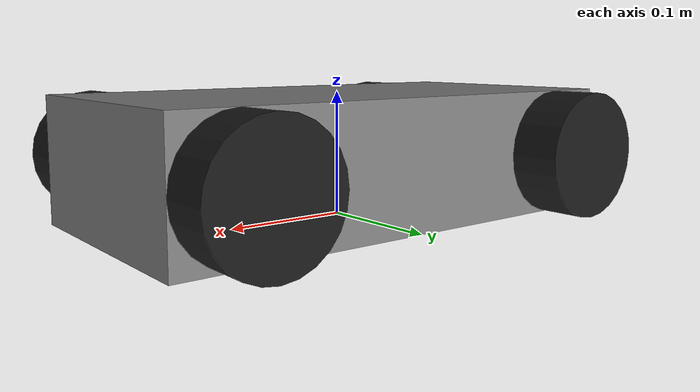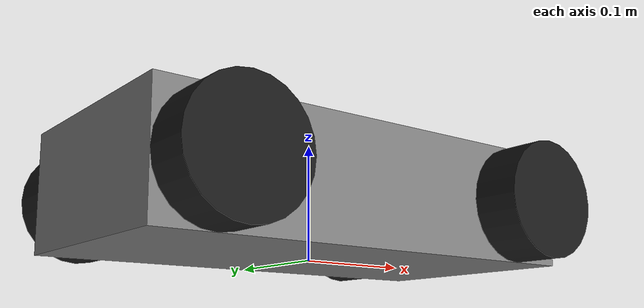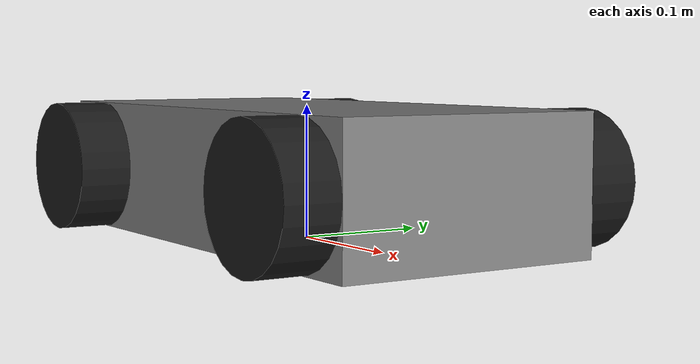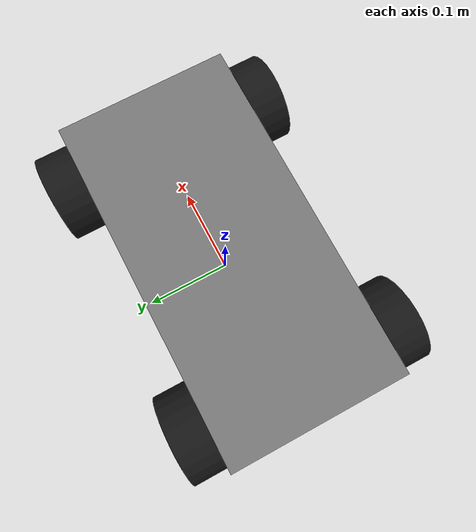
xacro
<?xml version="1.0"?>
<robot name="auto_rc" xmlns:xacro="http://ros.org/wiki/xacro">

  <xacro:macro name="box_inertia" params="m w h d">
    <inertial>
      <origin xyz="0 0 0" rpy="0 0 0"/> <mass value="${m}"/>
      <inertia ixx="${(m/12) * (h*h + d*d)}" ixy="0.0" ixz="0.0"
               iyy="${(m/12) * (w*w + d*d)}" iyz="0.0"
               izz="${(m/12) * (w*w + h*h)}"/>
    </inertial>
  </xacro:macro>

  <xacro:macro name="cylinder_inertia" params="m r h">
    <inertial>
      <origin xyz="0 0 0" rpy="0 0 0"/>
      <mass value="${m}"/>
      <inertia ixx="${(m/12) * (3*r*r + h*h)}" ixy="0" ixz="0"
               iyy="${(m/12) * (3*r*r + h*h)}" iyz="0"
               izz="${(m/2) * (r*r)}"/>
    </inertial>
  </xacro:macro>

  <xacro:macro name="dummy_inertia">
    <inertial>
      <origin xyz="0 0 0" rpy="0 0 0"/>
      <mass value="0.01"/>
      <inertia ixx="0.0001" ixy="0" ixz="0" iyy="0.0001" iyz="0" izz="0.0001"/>
    </inertial>
  </xacro:macro>

  <material name="gray"><color rgba="0.5 0.5 0.5 1.0"/></material>
  <material name="black"><color rgba="0.1 0.1 0.1 1.0"/></material>

  <link name="base_footprint"/>
  <joint name="base_footprint_joint" type="fixed">
    <parent link="base_footprint"/>
    <child link="base_link"/>
    <origin xyz="0 0 0.05" rpy="0 0 0"/>
  </joint>

  <link name="base_link">
    <visual>
      <geometry><box size="0.4 0.2 0.1"/></geometry>
      <material name="gray"/>
    </visual>
    <collision>
      <geometry><box size="0.4 0.2 0.1"/></geometry>
    </collision>
    <xacro:box_inertia m="2.0" w="0.4" h="0.2" d="0.1"/>
  </link>

  <xacro:macro name="rear_wheel" params="prefix y_reflect">
    <link name="${prefix}_rear_wheel">
      <visual>
        <geometry><cylinder radius="0.05" length="0.04"/></geometry>
        <material name="black"/>
      </visual>
      <collision>
        <geometry><cylinder radius="0.05" length="0.04"/></geometry>
      </collision>
      <xacro:cylinder_inertia m="0.2" r="0.05" h="0.04"/> </link>
    <joint name="${prefix}_rear_wheel_joint" type="continuous">
      <parent link="base_link"/>
      <child link="${prefix}_rear_wheel"/>
      <origin xyz="-0.15 ${y_reflect * 0.12} 0" rpy="-1.5707 0 0"/>
      <axis xyz="0 0 1"/>
    </joint>
  </xacro:macro>

  <xacro:rear_wheel prefix="left" y_reflect="1" />
  <xacro:rear_wheel prefix="right" y_reflect="-1" />

  <xacro:macro name="front_steering" params="prefix y_reflect">

    <link name="${prefix}_steering_hinge">
      <xacro:dummy_inertia/> </link>
    <joint name="${prefix}_steering_joint" type="revolute">
      <parent link="base_link"/>
      <child link="${prefix}_steering_hinge"/>
      <origin xyz="0.15 ${y_reflect * 0.12} 0" rpy="0 0 0"/>
      <axis xyz="0 0 1"/>
      <limit lower="-0.785" upper="0.785" effort="10.0" velocity="5.0"/>
    </joint>

    <link name="${prefix}_front_wheel">
      <visual>
        <geometry><cylinder radius="0.05" length="0.04"/></geometry>
        <material name="black"/>
      </visual>
      <collision> <geometry><cylinder radius="0.05" length="0.04"/></geometry>
      </collision>
      <xacro:cylinder_inertia m="0.2" r="0.05" h="0.04"/> </link>
    <joint name="${prefix}_front_wheel_joint" type="continuous">
      <parent link="${prefix}_steering_hinge"/>
      <child link="${prefix}_front_wheel"/>
      <origin xyz="0 0 0" rpy="-1.5707 0 0"/>
      <axis xyz="0 0 1"/>
    </joint>
  </xacro:macro>

  <xacro:front_steering prefix="left" y_reflect="1" />
  <xacro:front_steering prefix="right" y_reflect="-1" />

  <gazebo>
    <plugin filename="libignition-gazebo-ackermann-steering-system.so"
            name="ignition::gazebo::systems::AckermannSteering">
      <left_joint>left_rear_wheel_joint</left_joint>
      <right_joint>right_rear_wheel_joint</right_joint>
      <left_steering_joint>left_steering_joint</left_steering_joint>
      <right_steering_joint>right_steering_joint</right_steering_joint>

      <wheel_base>0.30</wheel_base>
      <wheel_separation>0.24</wheel_separation>
      <wheel_radius>0.05</wheel_radius>
      <steering_limit>0.785</steering_limit> <topic>/cmd_vel</topic>
      <odom_topic>/odom</odom_topic>
      <frame_id>odom</frame_id>
      <child_frame_id>base_footprint</child_frame_id>
      <odom_publish_frequency>50</odom_publish_frequency>
    </plugin>
  </gazebo>
</robot>
